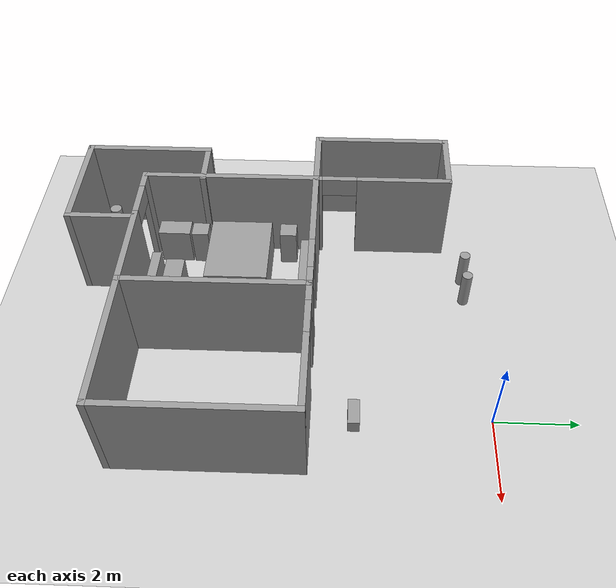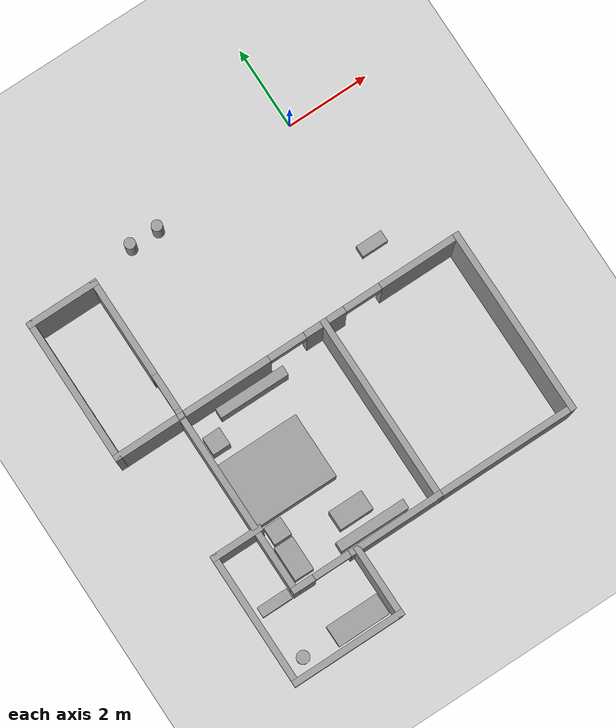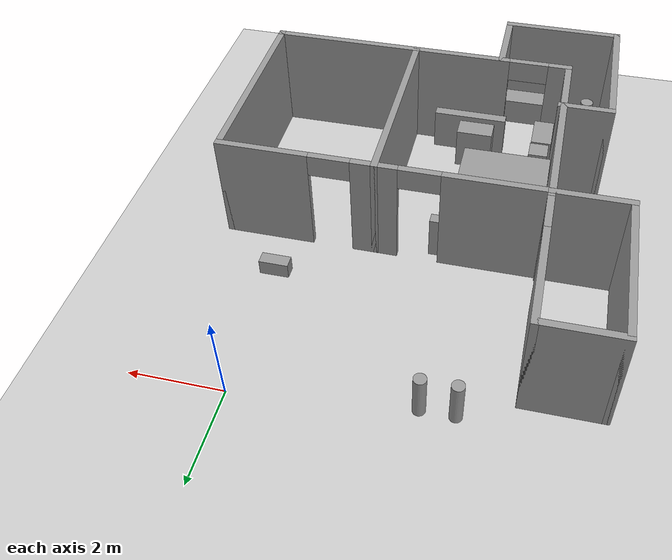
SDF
<sdf version="1.9">
 <world name="default">
  <model name="ground_plane">
   <static>true</static>
   <link name="link">
    <collision name="collision">
     <geometry><plane><normal>0 0 1</normal><size>100 100</size></plane></geometry>
     <surface><friction><ode><mu>100</mu><mu2>50</mu2></ode></friction></surface>
    </collision>
    <visual name="visual">
     <cast_shadows>false</cast_shadows>
     <geometry><plane><normal>0 0 1</normal><size>100 100</size></plane></geometry>
     <material>
      <script><uri>file://media/materials/scripts/gazebo.material</uri><name>Gazebo/Grey</name></script>
     </material>
    </visual>
   </link>
  </model>
  <model name="cma_varanda1">
   <pose>-6.3251799999999996 -2.5931299999999999 0 0 0 0</pose>
   <link name="Wall_0">
    <pose>0.80000000000000004 0 0 0 0 -1.5708</pose>
    <visual name="Wall_0_Visual_0">
     <pose>-0.55249999999999999 0 1.25 0 0 0</pose>
     <geometry><box><size>2.395 0.14999999999999999 2.5</size></box></geometry>
     <material>
      <script><uri>file://media/materials/scripts/gazebo.material</uri><name>Gazebo/Grey</name></script>
      <ambient>1 1 1 1</ambient>
     </material>
    </visual>
    <collision name="Wall_0_Collision_0">
     <geometry><box><size>2.395 0.14999999999999999 2.5</size></box></geometry>
     <pose>-0.55249999999999999 0 1.25 0 0 0</pose>
    </collision>
    <visual name="Wall_0_Visual_1">
     <pose>1.6375 0 1.25 0 0 0</pose>
     <geometry><box><size>0.22500000000000001 0.14999999999999999 2.5</size></box></geometry>
     <material>
      <script><uri>file://media/materials/scripts/gazebo.material</uri><name>Gazebo/Grey</name></script>
      <ambient>1 1 1 1</ambient>
     </material>
    </visual>
    <collision name="Wall_0_Collision_1">
     <geometry><box><size>0.22500000000000001 0.14999999999999999 2.5</size></box></geometry>
     <pose>1.6375 0 1.25 0 0 0</pose>
    </collision>
    <visual name="Wall_0_Visual_2">
     <pose>1.085 0 2.25 0 0 0</pose>
     <geometry><box><size>0.88 0.14999999999999999 0.5</size></box></geometry>
     <material>
      <script><uri>file://media/materials/scripts/gazebo.material</uri><name>Gazebo/Grey</name></script>
      <ambient>1 1 1 1</ambient>
     </material>
    </visual>
    <collision name="Wall_0_Collision_2">
     <geometry><box><size>0.88 0.14999999999999999 0.5</size></box></geometry>
     <pose>1.085 0 2.25 0 0 0</pose>
    </collision>
   </link>
   <link name="Wall_1">
    <collision name="Wall_1_Collision">
     <geometry><box><size>1.75 0.14999999999999999 2.5</size></box></geometry>
     <pose>0 0 1.25 0 0 0</pose>
    </collision>
    <visual name="Wall_1_Visual">
     <pose>0 0 1.25 0 0 0</pose>
     <geometry><box><size>1.75 0.14999999999999999 2.5</size></box></geometry>
     <material>
      <script><uri>file://media/materials/scripts/gazebo.material</uri><name>Gazebo/Grey</name></script>
      <ambient>1 1 1 1</ambient>
     </material>
    </visual>
    <pose>0 -1.675 0 0 0 3.1415899999999999</pose>
   </link>
   <link name="Wall_2">
    <collision name="Wall_2_Collision">
     <geometry><box><size>3.5 0.14999999999999999 2.5</size></box></geometry>
     <pose>0 0 1.25 0 0 0</pose>
    </collision>
    <visual name="Wall_2_Visual">
     <pose>0 0 1.25 0 0 0</pose>
     <geometry><box><size>3.5 0.14999999999999999 2.5</size></box></geometry>
     <material>
      <script><uri>file://media/materials/scripts/gazebo.material</uri><name>Gazebo/Grey</name></script>
      <ambient>1 1 1 1</ambient>
     </material>
    </visual>
    <pose>-0.80000000000000004 0 0 0 0 1.5708</pose>
   </link>
   <link name="Wall_3">
    <collision name="Wall_3_Collision">
     <geometry><box><size>1.75 0.14999999999999999 2.5</size></box></geometry>
     <pose>0 0 1.25 0 0 0</pose>
    </collision>
    <visual name="Wall_3_Visual">
     <pose>0 0 1.25 0 0 0</pose>
     <geometry><box><size>1.75 0.14999999999999999 2.5</size></box></geometry>
     <material>
      <script><uri>file://media/materials/scripts/gazebo.material</uri><name>Gazebo/Grey</name></script>
      <ambient>1 1 1 1</ambient>
     </material>
    </visual>
    <pose>0 1.675 0 0 0 0</pose>
   </link>
   <static>true</static>
  </model>
  <model name="cma_quartos">
   <pose>-2.58169 -7.2645600000000004 0 0 0 0</pose>
   <link name="Wall_0">
    <collision name="Wall_0_Collision">
     <geometry><box><size>4.5 0.14999999999999999 2.5</size></box></geometry>
     <pose>0 0 1.25 0 0 0</pose>
    </collision>
    <visual name="Wall_0_Visual">
     <pose>0 0 1.25 0 0 0</pose>
     <geometry><box><size>4.5 0.14999999999999999 2.5</size></box></geometry>
     <material>
      <script><uri>file://media/materials/scripts/gazebo.material</uri><name>Gazebo/Grey</name></script>
      <ambient>1 1 1 1</ambient>
     </material>
    </visual>
    <pose>0.64500000000000002 0.81000000000000005 0 0 0 -1.5708</pose>
   </link>
   <link name="Wall_1">
    <pose>-1.155 -1.365 0 0 0 3.1415899999999999</pose>
    <visual name="Wall_1_Visual_0">
     <pose>-0.72250000000000003 0 1.25 0 0 0</pose>
     <geometry><box><size>2.3050000000000002 0.14999999999999999 2.5</size></box></geometry>
     <material>
      <script><uri>file://media/materials/scripts/gazebo.material</uri><name>Gazebo/Grey</name></script>
      <ambient>1 1 1 1</ambient>
     </material>
    </visual>
    <collision name="Wall_1_Collision_0">
     <geometry><box><size>2.3050000000000002 0.14999999999999999 2.5</size></box></geometry>
     <pose>-0.72250000000000003 0 1.25 0 0 0</pose>
    </collision>
    <visual name="Wall_1_Visual_1">
     <pose>1.6025 0 1.25 0 0 0</pose>
     <geometry><box><size>0.54500000000000004 0.14999999999999999 2.5</size></box></geometry>
     <material>
      <script><uri>file://media/materials/scripts/gazebo.material</uri><name>Gazebo/Grey</name></script>
      <ambient>1 1 1 1</ambient>
     </material>
    </visual>
    <collision name="Wall_1_Collision_1">
     <geometry><box><size>0.54500000000000004 0.14999999999999999 2.5</size></box></geometry>
     <pose>1.6025 0 1.25 0 0 0</pose>
    </collision>
    <visual name="Wall_1_Visual_2">
     <pose>0.88 0 2.25 0 0 0</pose>
     <geometry><box><size>0.90000000000000002 0.14999999999999999 0.5</size></box></geometry>
     <material>
      <script><uri>file://media/materials/scripts/gazebo.material</uri><name>Gazebo/Grey</name></script>
      <ambient>1 1 1 1</ambient>
     </material>
    </visual>
    <collision name="Wall_1_Collision_2">
     <geometry><box><size>0.90000000000000002 0.14999999999999999 0.5</size></box></geometry>
     <pose>0.88 0 2.25 0 0 0</pose>
    </collision>
   </link>
   <link name="Wall_10">
    <collision name="Wall_10_Collision">
     <geometry><box><size>1.75 0.14999999999999999 2.5</size></box></geometry>
     <pose>0 0 1.25 0 0 0</pose>
    </collision>
    <visual name="Wall_10_Visual">
     <pose>0 0 1.25 0 0 0</pose>
     <geometry><box><size>1.75 0.14999999999999999 2.5</size></box></geometry>
     <material>
      <script><uri>file://media/materials/scripts/gazebo.material</uri><name>Gazebo/Grey</name></script>
      <ambient>1 1 1 1</ambient>
     </material>
    </visual>
    <pose>-1.395 -2.1850000000000001 0 0 0 -1.5708</pose>
   </link>
   <link name="Wall_11">
    <collision name="Wall_11_Collision">
     <geometry><box><size>2.75 0.14999999999999999 2.5</size></box></geometry>
     <pose>0 0 1.25 0 0 0</pose>
    </collision>
    <visual name="Wall_11_Visual">
     <pose>0 0 1.25 0 0 0</pose>
     <geometry><box><size>2.75 0.14999999999999999 2.5</size></box></geometry>
     <material>
      <script><uri>file://media/materials/scripts/gazebo.material</uri><name>Gazebo/Grey</name></script>
      <ambient>1 1 1 1</ambient>
     </material>
    </visual>
    <pose>-2.6949999999999998 -2.9849999999999999 0 0 0 3.1415899999999999</pose>
   </link>
   <link name="Wall_12">
    <collision name="Wall_12_Collision">
     <geometry><box><size>3.25 0.14999999999999999 2.5</size></box></geometry>
     <pose>0 0 1.25 0 0 0</pose>
    </collision>
    <visual name="Wall_12_Visual">
     <pose>0 0 1.25 0 0 0</pose>
     <geometry><box><size>3.25 0.14999999999999999 2.5</size></box></geometry>
     <material>
      <script><uri>file://media/materials/scripts/gazebo.material</uri><name>Gazebo/Grey</name></script>
      <ambient>1 1 1 1</ambient>
     </material>
    </visual>
    <pose>-3.9950000000000001 -1.4350000000000001 0 0 0 1.5708</pose>
   </link>
   <link name="Wall_13">
    <collision name="Wall_13_Collision">
     <geometry><box><size>1.25 0.14999999999999999 2.5</size></box></geometry>
     <pose>0 0 1.25 0 0 0</pose>
    </collision>
    <visual name="Wall_13_Visual">
     <pose>0 0 1.25 0 0 0</pose>
     <geometry><box><size>1.25 0.14999999999999999 2.5</size></box></geometry>
     <material>
      <script><uri>file://media/materials/scripts/gazebo.material</uri><name>Gazebo/Grey</name></script>
      <ambient>1 1 1 1</ambient>
     </material>
    </visual>
    <pose>-3.4449999999999998 0.115 0 0 0 0</pose>
   </link>
   <link name="Wall_2">
    <collision name="Wall_2_Collision">
     <geometry><box><size>4.5 0.14999999999999999 2.5</size></box></geometry>
     <pose>0 0 1.25 0 0 0</pose>
    </collision>
    <visual name="Wall_2_Visual">
     <pose>0 0 1.25 0 0 0</pose>
     <geometry><box><size>4.5 0.14999999999999999 2.5</size></box></geometry>
     <material>
      <script><uri>file://media/materials/scripts/gazebo.material</uri><name>Gazebo/Grey</name></script>
      <ambient>1 1 1 1</ambient>
     </material>
    </visual>
    <pose>-2.9550000000000001 0.81000000000000005 0 0 0 1.5708</pose>
   </link>
   <link name="Wall_3">
    <pose>-1.155 2.9849999999999999 0 0 0 0</pose>
    <visual name="Wall_3_Visual_0">
     <pose>-0.73250000000000004 0 1.25 0 0 0</pose>
     <geometry><box><size>2.2850000000000001 0.14999999999999999 2.5</size></box></geometry>
     <material>
      <script><uri>file://media/materials/scripts/gazebo.material</uri><name>Gazebo/Grey</name></script>
      <ambient>1 1 1 1</ambient>
     </material>
    </visual>
    <collision name="Wall_3_Collision_0">
     <geometry><box><size>2.2850000000000001 0.14999999999999999 2.5</size></box></geometry>
     <pose>-0.73250000000000004 0 1.25 0 0 0</pose>
    </collision>
    <visual name="Wall_3_Visual_1">
     <pose>1.5925 0 1.25 0 0 0</pose>
     <geometry><box><size>0.56499999999999995 0.14999999999999999 2.5</size></box></geometry>
     <material>
      <script><uri>file://media/materials/scripts/gazebo.material</uri><name>Gazebo/Grey</name></script>
      <ambient>1 1 1 1</ambient>
     </material>
    </visual>
    <collision name="Wall_3_Collision_1">
     <geometry><box><size>0.56499999999999995 0.14999999999999999 2.5</size></box></geometry>
     <pose>1.5925 0 1.25 0 0 0</pose>
    </collision>
    <visual name="Wall_3_Visual_2">
     <pose>0.85999999999999999 0 2.25 0 0 0</pose>
     <geometry><box><size>0.90000000000000002 0.14999999999999999 0.5</size></box></geometry>
     <material>
      <script><uri>file://media/materials/scripts/gazebo.material</uri><name>Gazebo/Grey</name></script>
      <ambient>1 1 1 1</ambient>
     </material>
    </visual>
    <collision name="Wall_3_Collision_2">
     <geometry><box><size>0.90000000000000002 0.14999999999999999 0.5</size></box></geometry>
     <pose>0.85999999999999999 0 2.25 0 0 0</pose>
    </collision>
   </link>
   <link name="Wall_6">
    <pose>2.3199999999999998 2.9849999999999999 0 0 0 0</pose>
    <visual name="Wall_6_Visual_0">
     <pose>-1.4575 0 1.25 0 0 0</pose>
     <geometry><box><size>0.58499999999999996 0.14999999999999999 2.5</size></box></geometry>
     <material>
      <script><uri>file://media/materials/scripts/gazebo.material</uri><name>Gazebo/Grey</name></script>
      <ambient>1 1 1 1</ambient>
     </material>
    </visual>
    <collision name="Wall_6_Collision_0">
     <geometry><box><size>0.58499999999999996 0.14999999999999999 2.5</size></box></geometry>
     <pose>-1.4575 0 1.25 0 0 0</pose>
    </collision>
    <visual name="Wall_6_Visual_1">
     <pose>0.74250000000000005 0 1.25 0 0 0</pose>
     <geometry><box><size>2.0150000000000001 0.14999999999999999 2.5</size></box></geometry>
     <material>
      <script><uri>file://media/materials/scripts/gazebo.material</uri><name>Gazebo/Grey</name></script>
      <ambient>1 1 1 1</ambient>
     </material>
    </visual>
    <collision name="Wall_6_Collision_1">
     <geometry><box><size>2.0150000000000001 0.14999999999999999 2.5</size></box></geometry>
     <pose>0.74250000000000005 0 1.25 0 0 0</pose>
    </collision>
    <visual name="Wall_6_Visual_2">
     <pose>-0.71499999999999997 0 2.25 0 0 0</pose>
     <geometry><box><size>0.90000000000000002 0.14999999999999999 0.5</size></box></geometry>
     <material>
      <script><uri>file://media/materials/scripts/gazebo.material</uri><name>Gazebo/Grey</name></script>
      <ambient>1 1 1 1</ambient>
     </material>
    </visual>
    <collision name="Wall_6_Collision_2">
     <geometry><box><size>0.90000000000000002 0.14999999999999999 0.5</size></box></geometry>
     <pose>-0.71499999999999997 0 2.25 0 0 0</pose>
    </collision>
   </link>
   <link name="Wall_7">
    <collision name="Wall_7_Collision">
     <geometry><box><size>4.5 0.14999999999999999 2.5</size></box></geometry>
     <pose>0 0 1.25 0 0 0</pose>
    </collision>
    <visual name="Wall_7_Visual">
     <pose>0 0 1.25 0 0 0</pose>
     <geometry><box><size>4.5 0.14999999999999999 2.5</size></box></geometry>
     <material>
      <script><uri>file://media/materials/scripts/gazebo.material</uri><name>Gazebo/Grey</name></script>
      <ambient>1 1 1 1</ambient>
     </material>
    </visual>
    <pose>3.9950000000000001 0.81000000000000005 0 0 0 -1.5708</pose>
   </link>
   <link name="Wall_8">
    <collision name="Wall_8_Collision">
     <geometry><box><size>3.5 0.14999999999999999 2.5</size></box></geometry>
     <pose>0 0 1.25 0 0 0</pose>
    </collision>
    <visual name="Wall_8_Visual">
     <pose>0 0 1.25 0 0 0</pose>
     <geometry><box><size>3.5 0.14999999999999999 2.5</size></box></geometry>
     <material>
      <script><uri>file://media/materials/scripts/gazebo.material</uri><name>Gazebo/Grey</name></script>
      <ambient>1 1 1 1</ambient>
     </material>
    </visual>
    <pose>2.3199999999999998 -1.365 0 0 0 3.1415899999999999</pose>
   </link>
   <static>true</static>
  </model>
  <model name="cma_cama_c">
   <link name="link_0">
    <pose>5.0000000000000004e-06 -3.9999999999999998e-06 0 0 0 0</pose>
    <inertial>
     <mass>3.1835800000000001</mass>
     <inertia>
      <ixx>0.93486199999999997</ixx>
      <ixy>0</ixy>
      <ixz>0</ixz>
      <iyy>1.3306899999999999</iyy>
      <iyz>0</iyz>
      <izz>1.7349600000000001</izz>
     </inertia>
    </inertial>
    <visual name="visual">
     <geometry><box><size>2.0039400000000001 1.58866 1</size></box></geometry>
     <material>
      <lighting>true</lighting>
      <script><uri>file://media/materials/scripts/gazebo.material</uri><name>Gazebo/Grey</name></script>
      <ambient>0.300000012 0.300000012 0.300000012 1</ambient>
      <diffuse>0.699999988 0.699999988 0.699999988 1</diffuse>
      <specular>0.00999999978 0.00999999978 0.00999999978 1</specular>
      <emissive>0 0 0 1</emissive>
     </material>
    </visual>
    <collision name="collision">
     <geometry><box><size>2.0039400000000001 1.58866 1</size></box></geometry>
     <surface>
      <friction>
       <ode><mu>1</mu><mu2>1</mu2><fdir1>0 0 0</fdir1><slip1>0</slip1><slip2>0</slip2></ode>
       <torsional>
        <coefficient>1</coefficient>
        <patch_radius>0</patch_radius>
        <surface_radius>0</surface_radius>
        <use_patch_radius>true</use_patch_radius>
        <ode><slip>0</slip></ode>
       </torsional>
      </friction>
      <bounce><restitution_coefficient>0</restitution_coefficient><threshold>1000000</threshold></bounce>
      <contact>
       <collide_without_contact>false</collide_without_contact>
       <collide_without_contact_bitmask>1</collide_without_contact_bitmask>
       <collide_bitmask>1</collide_bitmask>
       <ode>
        <soft_cfm>0</soft_cfm>
        <soft_erp>0.20000000000000001</soft_erp>
        <kp>10000000000000</kp>
        <kd>1</kd>
        <max_vel>0.01</max_vel>
        <min_depth>0</min_depth>
       </ode>
       <bullet>
        <split_impulse>true</split_impulse>
        <split_impulse_penetration_threshold>-0.01</split_impulse_penetration_threshold>
        <soft_cfm>0</soft_cfm>
        <soft_erp>0.20000000000000001</soft_erp>
        <kp>10000000000000</kp>
        <kd>1</kd>
       </bullet>
      </contact>
     </surface>
    </collision>
   </link>
   <static>false</static>
   <pose>-4.43933 -6.2481600000000004 0.5 0 0 0</pose>
  </model>
  <model name="cma_armario_0">
   <link name="link_0">
    <pose>1.3215699999999999 0.88517800000000002 0.5 0 0 0</pose>
    <inertial>
     <mass>0.40237600000000001</mass>
     <inertia>
      <ixx>0.0353686</ixx>
      <ixy>0</ixy>
      <ixz>0</ixz>
      <iyy>0.13261600000000001</iyy>
      <iyz>0</iyz>
      <izz>0.100922</izz>
     </inertia>
    </inertial>
    <visual name="visual">
     <geometry><box><size>1.7187699999999999 0.234069 1</size></box></geometry>
     <material>
      <lighting>true</lighting>
      <script><uri>file://media/materials/scripts/gazebo.material</uri><name>Gazebo/Grey</name></script>
      <ambient>0.300000012 0.300000012 0.300000012 1</ambient>
      <diffuse>0.699999988 0.699999988 0.699999988 1</diffuse>
      <specular>0.00999999978 0.00999999978 0.00999999978 1</specular>
      <emissive>0 0 0 1</emissive>
     </material>
    </visual>
    <collision name="collision">
     <geometry><box><size>1.7187699999999999 0.234069 1</size></box></geometry>
     <surface>
      <friction>
       <ode><mu>1</mu><mu2>1</mu2><fdir1>0 0 0</fdir1><slip1>0</slip1><slip2>0</slip2></ode>
       <torsional>
        <coefficient>1</coefficient>
        <patch_radius>0</patch_radius>
        <surface_radius>0</surface_radius>
        <use_patch_radius>true</use_patch_radius>
        <ode><slip>0</slip></ode>
       </torsional>
      </friction>
      <bounce><restitution_coefficient>0</restitution_coefficient><threshold>1000000</threshold></bounce>
      <contact>
       <collide_without_contact>false</collide_without_contact>
       <collide_without_contact_bitmask>1</collide_without_contact_bitmask>
       <collide_bitmask>1</collide_bitmask>
       <ode>
        <soft_cfm>0</soft_cfm>
        <soft_erp>0.20000000000000001</soft_erp>
        <kp>10000000000000</kp>
        <kd>1</kd>
        <max_vel>0.01</max_vel>
        <min_depth>0</min_depth>
       </ode>
       <bullet>
        <split_impulse>true</split_impulse>
        <split_impulse_penetration_threshold>-0.01</split_impulse_penetration_threshold>
        <soft_cfm>0</soft_cfm>
        <soft_erp>0.20000000000000001</soft_erp>
        <kp>10000000000000</kp>
        <kd>1</kd>
       </bullet>
      </contact>
     </surface>
    </collision>
   </link>
   <static>false</static>
   <pose>-5.2792500000000002 -5.4164099999999999 9.9999999999999995e-07 -9.9999999999999995e-07 2.0000000000000008e-06 -0.0033050000000000006</pose>
  </model>
  <model name="cma_gaveteiro_pequeno_1">
   <link name="link_0">
    <pose>0.25617400000000001 1.2505500000000001 0.5 0 0 0</pose>
    <inertial>
     <mass>0.18718599999999999</mass>
     <inertia>
      <ixx>0.018509999999999999</ixx>
      <ixy>0</ixy>
      <ixz>0</ixz>
      <iyy>0.018527600000000002</iyy>
      <iyz>0</iyz>
      <izz>0.00583981</izz>
     </inertia>
    </inertial>
    <visual name="visual">
     <geometry><box><size>0.43331700000000001 0.432002 1</size></box></geometry>
     <material>
      <lighting>true</lighting>
      <script><uri>file://media/materials/scripts/gazebo.material</uri><name>Gazebo/Grey</name></script>
      <ambient>0.300000012 0.300000012 0.300000012 1</ambient>
      <diffuse>0.699999988 0.699999988 0.699999988 1</diffuse>
      <specular>0.00999999978 0.00999999978 0.00999999978 1</specular>
      <emissive>0 0 0 1</emissive>
     </material>
    </visual>
    <collision name="collision">
     <geometry><box><size>0.43331700000000001 0.432002 1</size></box></geometry>
     <surface>
      <friction>
       <ode><mu>1</mu><mu2>1</mu2><fdir1>0 0 0</fdir1><slip1>0</slip1><slip2>0</slip2></ode>
       <torsional>
        <coefficient>1</coefficient>
        <patch_radius>0</patch_radius>
        <surface_radius>0</surface_radius>
        <use_patch_radius>true</use_patch_radius>
        <ode><slip>0</slip></ode>
       </torsional>
      </friction>
      <bounce><restitution_coefficient>0</restitution_coefficient><threshold>1000000</threshold></bounce>
      <contact>
       <collide_without_contact>false</collide_without_contact>
       <collide_without_contact_bitmask>1</collide_without_contact_bitmask>
       <collide_bitmask>1</collide_bitmask>
       <ode>
        <soft_cfm>0</soft_cfm>
        <soft_erp>0.20000000000000001</soft_erp>
        <kp>10000000000000</kp>
        <kd>1</kd>
        <max_vel>0.01</max_vel>
        <min_depth>0</min_depth>
       </ode>
       <bullet>
        <split_impulse>true</split_impulse>
        <split_impulse_penetration_threshold>-0.01</split_impulse_penetration_threshold>
        <soft_cfm>0</soft_cfm>
        <soft_erp>0.20000000000000001</soft_erp>
        <kp>10000000000000</kp>
        <kd>1</kd>
       </bullet>
      </contact>
     </surface>
    </collision>
   </link>
   <static>false</static>
   <pose>-5.4309500000000002 -6.25509 -3.9999999999999998e-06 3.0000000000000001e-06 -2.9999999999999997e-06 -1.8000000000000007e-05</pose>
  </model>
  <model name="cma_armario_s_0">
   <link name="link_1">
    <pose>-1.9999999999999999e-06 -3.0000000000000001e-06 0 0 0 0</pose>
    <inertial>
     <mass>0.39015899999999998</mass>
     <inertia>
      <ixx>0.039647000000000002</ixx>
      <ixy>0</ixy>
      <ixz>0</ixz>
      <iyy>0.055070800000000003</iyy>
      <iyz>0</iyz>
      <izz>0.029691200000000001</izz>
     </inertia>
    </inertial>
    <visual name="visual">
     <geometry><box><size>0.83294199999999996 0.46839700000000001 1</size></box></geometry>
     <material>
      <lighting>true</lighting>
      <script><uri>file://media/materials/scripts/gazebo.material</uri><name>Gazebo/Grey</name></script>
      <ambient>0.300000012 0.300000012 0.300000012 1</ambient>
      <diffuse>0.699999988 0.699999988 0.699999988 1</diffuse>
      <specular>0.00999999978 0.00999999978 0.00999999978 1</specular>
      <emissive>0 0 0 1</emissive>
     </material>
    </visual>
    <collision name="collision">
     <geometry><box><size>0.83294199999999996 0.46839700000000001 1</size></box></geometry>
     <surface>
      <friction>
       <ode><mu>1</mu><mu2>1</mu2><fdir1>0 0 0</fdir1><slip1>0</slip1><slip2>0</slip2></ode>
       <torsional>
        <coefficient>1</coefficient>
        <patch_radius>0</patch_radius>
        <surface_radius>0</surface_radius>
        <use_patch_radius>true</use_patch_radius>
        <ode><slip>0</slip></ode>
       </torsional>
      </friction>
      <bounce><restitution_coefficient>0</restitution_coefficient><threshold>1000000</threshold></bounce>
      <contact>
       <collide_without_contact>false</collide_without_contact>
       <collide_without_contact_bitmask>1</collide_without_contact_bitmask>
       <collide_bitmask>1</collide_bitmask>
       <ode>
        <soft_cfm>0</soft_cfm>
        <soft_erp>0.20000000000000001</soft_erp>
        <kp>10000000000000</kp>
        <kd>1</kd>
        <max_vel>0.01</max_vel>
        <min_depth>0</min_depth>
       </ode>
       <bullet>
        <split_impulse>true</split_impulse>
        <split_impulse_penetration_threshold>-0.01</split_impulse_penetration_threshold>
        <soft_cfm>0</soft_cfm>
        <soft_erp>0.20000000000000001</soft_erp>
        <kp>10000000000000</kp>
        <kd>1</kd>
       </bullet>
      </contact>
     </surface>
    </collision>
   </link>
   <static>false</static>
   <pose>-5.1684599999999996 -8.0155700000000003 0.5 0 0 -1.57603</pose>
  </model>
  <model name="cma_gaveteiro_pequeno_2">
   <link name="link_0">
    <pose>0.25617400000000001 1.2505500000000001 0.5 0 0 0</pose>
    <inertial>
     <mass>0.18718599999999999</mass>
     <inertia>
      <ixx>0.018509999999999999</ixx>
      <ixy>0</ixy>
      <ixz>0</ixz>
      <iyy>0.018527600000000002</iyy>
      <iyz>0</iyz>
      <izz>0.00583981</izz>
     </inertia>
    </inertial>
    <visual name="visual">
     <geometry><box><size>0.43331700000000001 0.432002 1</size></box></geometry>
     <material>
      <lighting>true</lighting>
      <script><uri>file://media/materials/scripts/gazebo.material</uri><name>Gazebo/Grey</name></script>
      <ambient>0.300000012 0.300000012 0.300000012 1</ambient>
      <diffuse>0.699999988 0.699999988 0.699999988 1</diffuse>
      <specular>0.00999999978 0.00999999978 0.00999999978 1</specular>
      <emissive>0 0 0 1</emissive>
     </material>
    </visual>
    <collision name="collision">
     <geometry><box><size>0.43331700000000001 0.432002 1</size></box></geometry>
     <surface>
      <friction>
       <ode><mu>1</mu><mu2>1</mu2><fdir1>0 0 0</fdir1><slip1>0</slip1><slip2>0</slip2></ode>
       <torsional>
        <coefficient>1</coefficient>
        <patch_radius>0</patch_radius>
        <surface_radius>0</surface_radius>
        <use_patch_radius>true</use_patch_radius>
        <ode><slip>0</slip></ode>
       </torsional>
      </friction>
      <bounce><restitution_coefficient>0</restitution_coefficient><threshold>1000000</threshold></bounce>
      <contact>
       <collide_without_contact>false</collide_without_contact>
       <collide_without_contact_bitmask>1</collide_without_contact_bitmask>
       <collide_bitmask>1</collide_bitmask>
       <ode>
        <soft_cfm>0</soft_cfm>
        <soft_erp>0.20000000000000001</soft_erp>
        <kp>10000000000000</kp>
        <kd>1</kd>
        <max_vel>0.01</max_vel>
        <min_depth>0</min_depth>
       </ode>
       <bullet>
        <split_impulse>true</split_impulse>
        <split_impulse_penetration_threshold>-0.01</split_impulse_penetration_threshold>
        <soft_cfm>0</soft_cfm>
        <soft_erp>0.20000000000000001</soft_erp>
        <kp>10000000000000</kp>
        <kd>1</kd>
       </bullet>
      </contact>
     </surface>
    </collision>
   </link>
   <static>false</static>
   <pose>-5.3916500000000003 -8.5855200000000007 -9.9999999999999995e-07 1.0000000000000002e-06 -9.9999999999999995e-07 -4.2999999999999995e-05</pose>
  </model>
  <model name="cma_armario_s_1">
   <link name="link_1">
    <pose>-1.9999999999999999e-06 -3.0000000000000001e-06 0 0 0 0</pose>
    <inertial>
     <mass>0.39015899999999998</mass>
     <inertia>
      <ixx>0.039647000000000002</ixx>
      <ixy>0</ixy>
      <ixz>0</ixz>
      <iyy>0.055070800000000003</iyy>
      <iyz>0</iyz>
      <izz>0.029691200000000001</izz>
     </inertia>
    </inertial>
    <visual name="visual">
     <geometry><box><size>0.83294199999999996 0.46839700000000001 1</size></box></geometry>
     <material>
      <lighting>true</lighting>
      <script><uri>file://media/materials/scripts/gazebo.material</uri><name>Gazebo/Grey</name></script>
      <ambient>0.300000012 0.300000012 0.300000012 1</ambient>
      <diffuse>0.699999988 0.699999988 0.699999988 1</diffuse>
      <specular>0.00999999978 0.00999999978 0.00999999978 1</specular>
      <emissive>0 0 0 1</emissive>
     </material>
    </visual>
    <collision name="collision">
     <geometry><box><size>0.83294199999999996 0.46839700000000001 1</size></box></geometry>
     <surface>
      <friction>
       <ode><mu>1</mu><mu2>1</mu2><fdir1>0 0 0</fdir1><slip1>0</slip1><slip2>0</slip2></ode>
       <torsional>
        <coefficient>1</coefficient>
        <patch_radius>0</patch_radius>
        <surface_radius>0</surface_radius>
        <use_patch_radius>true</use_patch_radius>
        <ode><slip>0</slip></ode>
       </torsional>
      </friction>
      <bounce><restitution_coefficient>0</restitution_coefficient><threshold>1000000</threshold></bounce>
      <contact>
       <collide_without_contact>false</collide_without_contact>
       <collide_without_contact_bitmask>1</collide_without_contact_bitmask>
       <collide_bitmask>1</collide_bitmask>
       <ode>
        <soft_cfm>0</soft_cfm>
        <soft_erp>0.20000000000000001</soft_erp>
        <kp>10000000000000</kp>
        <kd>1</kd>
        <max_vel>0.01</max_vel>
        <min_depth>0</min_depth>
       </ode>
       <bullet>
        <split_impulse>true</split_impulse>
        <split_impulse_penetration_threshold>-0.01</split_impulse_penetration_threshold>
        <soft_cfm>0</soft_cfm>
        <soft_erp>0.20000000000000001</soft_erp>
        <kp>10000000000000</kp>
        <kd>1</kd>
       </bullet>
      </contact>
     </surface>
    </collision>
   </link>
   <static>false</static>
   <pose>-3.5794800000000002 -7.8237399999999999 0.499996 -4.1359030629326426e-25 9.0000000000000036e-06 -0.00045199999999999998</pose>
  </model>
  <model name="cma_armario_1">
   <link name="link_0">
    <pose>1.3215699999999999 0.88517800000000002 0.5 0 0 0</pose>
    <inertial>
     <mass>0.40237600000000001</mass>
     <inertia>
      <ixx>0.0353686</ixx>
      <ixy>0</ixy>
      <ixz>0</ixz>
      <iyy>0.13261600000000001</iyy>
      <iyz>0</iyz>
      <izz>0.100922</izz>
     </inertia>
    </inertial>
    <visual name="visual">
     <geometry><box><size>1.7187699999999999 0.234069 1</size></box></geometry>
     <material>
      <lighting>true</lighting>
      <script><uri>file://media/materials/scripts/gazebo.material</uri><name>Gazebo/Grey</name></script>
      <ambient>0.300000012 0.300000012 0.300000012 1</ambient>
      <diffuse>0.699999988 0.699999988 0.699999988 1</diffuse>
      <specular>0.00999999978 0.00999999978 0.00999999978 1</specular>
      <emissive>0 0 0 1</emissive>
     </material>
    </visual>
    <collision name="collision">
     <geometry><box><size>1.7187699999999999 0.234069 1</size></box></geometry>
     <surface>
      <friction>
       <ode><mu>1</mu><mu2>1</mu2><fdir1>0 0 0</fdir1><slip1>0</slip1><slip2>0</slip2></ode>
       <torsional>
        <coefficient>1</coefficient>
        <patch_radius>0</patch_radius>
        <surface_radius>0</surface_radius>
        <use_patch_radius>true</use_patch_radius>
        <ode><slip>0</slip></ode>
       </torsional>
      </friction>
      <bounce><restitution_coefficient>0</restitution_coefficient><threshold>1000000</threshold></bounce>
      <contact>
       <collide_without_contact>false</collide_without_contact>
       <collide_without_contact_bitmask>1</collide_without_contact_bitmask>
       <collide_bitmask>1</collide_bitmask>
       <ode>
        <soft_cfm>0</soft_cfm>
        <soft_erp>0.20000000000000001</soft_erp>
        <kp>10000000000000</kp>
        <kd>1</kd>
        <max_vel>0.01</max_vel>
        <min_depth>0</min_depth>
       </ode>
       <bullet>
        <split_impulse>true</split_impulse>
        <split_impulse_penetration_threshold>-0.01</split_impulse_penetration_threshold>
        <soft_cfm>0</soft_cfm>
        <soft_erp>0.20000000000000001</soft_erp>
        <kp>10000000000000</kp>
        <kd>1</kd>
       </bullet>
      </contact>
     </surface>
    </collision>
   </link>
   <static>false</static>
   <pose>-4.7020900000000001 -9.22485 9.9999999999999995e-07 -9.9999999999999995e-07 2.0000000000000008e-06 -0.0033050000000000006</pose>
  </model>
  <model name="cma_lixo_2">
   <link name="link_1">
    <pose>0.88296200000000002 1.81586 0.5 0 0 0</pose>
    <inertial>
     <mass>0.068764400000000003</mass>
     <inertia>
      <ixx>0.00602588</ixx>
      <ixy>0</ixy>
      <ixz>0</ixz>
      <iyy>0.00602588</iyy>
      <iyz>0</iyz>
      <izz>0.00059106800000000004</izz>
     </inertia>
    </inertial>
    <visual name="visual">
     <geometry><cylinder><radius>0.13111200000000001</radius><length>1</length></cylinder></geometry>
     <material>
      <lighting>true</lighting>
      <script><uri>file://media/materials/scripts/gazebo.material</uri><name>Gazebo/Grey</name></script>
      <ambient>0.300000012 0.300000012 0.300000012 1</ambient>
      <diffuse>0.699999988 0.699999988 0.699999988 1</diffuse>
      <specular>0.00999999978 0.00999999978 0.00999999978 1</specular>
      <emissive>0 0 0 1</emissive>
     </material>
    </visual>
    <collision name="collision">
     <geometry><cylinder><radius>0.13111200000000001</radius><length>1</length></cylinder></geometry>
     <surface>
      <friction>
       <ode><mu>1</mu><mu2>1</mu2><fdir1>0 0 0</fdir1><slip1>0</slip1><slip2>0</slip2></ode>
       <torsional>
        <coefficient>1</coefficient>
        <patch_radius>0</patch_radius>
        <surface_radius>0</surface_radius>
        <use_patch_radius>true</use_patch_radius>
        <ode><slip>0</slip></ode>
       </torsional>
      </friction>
      <bounce><restitution_coefficient>0</restitution_coefficient><threshold>1000000</threshold></bounce>
      <contact>
       <collide_without_contact>false</collide_without_contact>
       <collide_without_contact_bitmask>1</collide_without_contact_bitmask>
       <collide_bitmask>1</collide_bitmask>
       <ode>
        <soft_cfm>0</soft_cfm>
        <soft_erp>0.20000000000000001</soft_erp>
        <kp>10000000000000</kp>
        <kd>1</kd>
        <max_vel>0.01</max_vel>
        <min_depth>0</min_depth>
       </ode>
       <bullet>
        <split_impulse>true</split_impulse>
        <split_impulse_penetration_threshold>-0.01</split_impulse_penetration_threshold>
        <soft_cfm>0</soft_cfm>
        <soft_erp>0.20000000000000001</soft_erp>
        <kp>10000000000000</kp>
        <kd>1</kd>
       </bullet>
      </contact>
     </surface>
    </collision>
   </link>
   <static>false</static>
   <pose>-5.2734199999999998 -2.2134499999999999 -3.0000000000000001e-06 0 0 0</pose>
  </model>
  <model name="cma_lixo_3">
   <link name="link_1">
    <pose>0.88296200000000002 1.81586 0.5 0 0 0</pose>
    <inertial>
     <mass>0.068764400000000003</mass>
     <inertia>
      <ixx>0.00602588</ixx>
      <ixy>0</ixy>
      <ixz>0</ixz>
      <iyy>0.00602588</iyy>
      <iyz>0</iyz>
      <izz>0.00059106800000000004</izz>
     </inertia>
    </inertial>
    <visual name="visual">
     <geometry><cylinder><radius>0.13111200000000001</radius><length>1</length></cylinder></geometry>
     <material>
      <lighting>true</lighting>
      <script><uri>file://media/materials/scripts/gazebo.material</uri><name>Gazebo/Grey</name></script>
      <ambient>0.300000012 0.300000012 0.300000012 1</ambient>
      <diffuse>0.699999988 0.699999988 0.699999988 1</diffuse>
      <specular>0.00999999978 0.00999999978 0.00999999978 1</specular>
      <emissive>0 0 0 1</emissive>
     </material>
    </visual>
    <collision name="collision">
     <geometry><cylinder><radius>0.13111200000000001</radius><length>1</length></cylinder></geometry>
     <surface>
      <friction>
       <ode><mu>1</mu><mu2>1</mu2><fdir1>0 0 0</fdir1><slip1>0</slip1><slip2>0</slip2></ode>
       <torsional>
        <coefficient>1</coefficient>
        <patch_radius>0</patch_radius>
        <surface_radius>0</surface_radius>
        <use_patch_radius>true</use_patch_radius>
        <ode><slip>0</slip></ode>
       </torsional>
      </friction>
      <bounce><restitution_coefficient>0</restitution_coefficient><threshold>1000000</threshold></bounce>
      <contact>
       <collide_without_contact>false</collide_without_contact>
       <collide_without_contact_bitmask>1</collide_without_contact_bitmask>
       <collide_bitmask>1</collide_bitmask>
       <ode>
        <soft_cfm>0</soft_cfm>
        <soft_erp>0.20000000000000001</soft_erp>
        <kp>10000000000000</kp>
        <kd>1</kd>
        <max_vel>0.01</max_vel>
        <min_depth>0</min_depth>
       </ode>
       <bullet>
        <split_impulse>true</split_impulse>
        <split_impulse_penetration_threshold>-0.01</split_impulse_penetration_threshold>
        <soft_cfm>0</soft_cfm>
        <soft_erp>0.20000000000000001</soft_erp>
        <kp>10000000000000</kp>
        <kd>1</kd>
       </bullet>
      </contact>
     </surface>
    </collision>
   </link>
   <static>false</static>
   <pose>-4.5749500000000003 -2.2090000000000001 -3.0000000000000001e-06 0 0 0</pose>
  </model>
  <model name="cma_barra_70cm">
   <link name="link_2">
    <pose>3.3538399999999999 1.20238 0.5 0 0 0</pose>
    <inertial>
     <mass>0.063136800000000007</mass>
     <inertia>
      <ixx>0.0010654200000000001</ixx>
      <ixy>0</ixy>
      <ixz>0</ixz>
      <iyy>0.0028472699999999998</iyy>
      <iyz>0</iyz>
      <izz>0.0025815</izz>
     </inertia>
    </inertial>
    <visual name="visual">
     <geometry><box><size>0.64393800000000001 0.27572799999999997 0.35573700000000003</size></box></geometry>
     <material>
      <lighting>true</lighting>
      <script><uri>file://media/materials/scripts/gazebo.material</uri><name>Gazebo/Grey</name></script>
      <ambient>0.300000012 0.300000012 0.300000012 1</ambient>
      <diffuse>0.699999988 0.699999988 0.699999988 1</diffuse>
      <specular>0.00999999978 0.00999999978 0.00999999978 1</specular>
      <emissive>0 0 0 1</emissive>
     </material>
    </visual>
    <collision name="collision">
     <geometry><box><size>0.64393800000000001 0.27572799999999997 0.35573700000000003</size></box></geometry>
     <surface>
      <friction>
       <ode><mu>1</mu><mu2>1</mu2><fdir1>0 0 0</fdir1><slip1>0</slip1><slip2>0</slip2></ode>
       <torsional>
        <coefficient>1</coefficient>
        <patch_radius>0</patch_radius>
        <surface_radius>0</surface_radius>
        <use_patch_radius>true</use_patch_radius>
        <ode><slip>0</slip></ode>
       </torsional>
      </friction>
      <bounce><restitution_coefficient>0</restitution_coefficient><threshold>1000000</threshold></bounce>
      <contact>
       <collide_without_contact>false</collide_without_contact>
       <collide_without_contact_bitmask>1</collide_without_contact_bitmask>
       <collide_bitmask>1</collide_bitmask>
       <ode>
        <soft_cfm>0</soft_cfm>
        <soft_erp>0.20000000000000001</soft_erp>
        <kp>10000000000000</kp>
        <kd>1</kd>
        <max_vel>0.01</max_vel>
        <min_depth>0</min_depth>
       </ode>
       <bullet>
        <split_impulse>true</split_impulse>
        <split_impulse_penetration_threshold>-0.01</split_impulse_penetration_threshold>
        <soft_cfm>0</soft_cfm>
        <soft_erp>0.20000000000000001</soft_erp>
        <kp>10000000000000</kp>
        <kd>1</kd>
       </bullet>
      </contact>
     </surface>
    </collision>
   </link>
   <static>false</static>
   <pose>-3.32572 -4.40177 -0.322102 -2.6999999999999999e-05 -1.6543612251060553e-24 -0.00096199999999999986</pose>
  </model>
  <model name="cma_sut_a1">
   <link name="link_0">
    <pose>1.9999999999999999e-06 1.9999999999999999e-06 0 0 0 0</pose>
    <inertial>
     <mass>0.43206699999999998</mass>
     <inertia>
      <ixx>0.024664499999999999</ixx>
      <ixy>0</ixy>
      <ixz>0</ixz>
      <iyy>0.075104199999999996</iyy>
      <iyz>0</iyz>
      <izz>0.069772100000000004</izz>
     </inertia>
    </inertial>
    <visual name="visual">
     <geometry><box><size>1.29203 0.51813299999999995 0.64540500000000001</size></box></geometry>
     <material>
      <lighting>true</lighting>
      <script><uri>file://media/materials/scripts/gazebo.material</uri><name>Gazebo/Grey</name></script>
      <ambient>0.300000012 0.300000012 0.300000012 1</ambient>
      <diffuse>0.699999988 0.699999988 0.699999988 1</diffuse>
      <specular>0.00999999978 0.00999999978 0.00999999978 1</specular>
      <emissive>0 0 0 1</emissive>
     </material>
    </visual>
    <collision name="collision">
     <geometry><box><size>1.29203 0.51813299999999995 0.64540500000000001</size></box></geometry>
     <surface>
      <friction>
       <ode><mu>1</mu><mu2>1</mu2><fdir1>0 0 0</fdir1><slip1>0</slip1><slip2>0</slip2></ode>
       <torsional>
        <coefficient>1</coefficient>
        <patch_radius>0</patch_radius>
        <surface_radius>0</surface_radius>
        <use_patch_radius>true</use_patch_radius>
        <ode><slip>0</slip></ode>
       </torsional>
      </friction>
      <bounce><restitution_coefficient>0</restitution_coefficient><threshold>1000000</threshold></bounce>
      <contact>
       <collide_without_contact>false</collide_without_contact>
       <collide_without_contact_bitmask>1</collide_without_contact_bitmask>
       <collide_bitmask>1</collide_bitmask>
       <ode>
        <soft_cfm>0</soft_cfm>
        <soft_erp>0.20000000000000001</soft_erp>
        <kp>10000000000000</kp>
        <kd>1</kd>
        <max_vel>0.01</max_vel>
        <min_depth>0</min_depth>
       </ode>
       <bullet>
        <split_impulse>true</split_impulse>
        <split_impulse_penetration_threshold>-0.01</split_impulse_penetration_threshold>
        <soft_cfm>0</soft_cfm>
        <soft_erp>0.20000000000000001</soft_erp>
        <kp>10000000000000</kp>
        <kd>1</kd>
       </bullet>
      </contact>
     </surface>
    </collision>
   </link>
   <static>false</static>
   <pose>-4.7378 -9.8567499999999999 0.32270300000000002 0 0 0</pose>
  </model>
  <model name="cma_sui_v">
   <link name="link_1">
    <pose>5.0000000000000004e-06 -5.0000000000000004e-06 0 0 0 0</pose>
    <inertial>
     <mass>0.067799200000000004</mass>
     <inertia>
      <ixx>0.0033454499999999998</ixx>
      <ixy>0</ixy>
      <ixz>0</ixz>
      <iyy>0.0033454499999999998</iyy>
      <iyz>0</iyz>
      <izz>0.00079549600000000003</izz>
     </inertia>
    </inertial>
    <visual name="visual">
     <geometry><cylinder><radius>0.15318499999999999</radius><length>0.722306</length></cylinder></geometry>
     <material>
      <lighting>true</lighting>
      <script><uri>file://media/materials/scripts/gazebo.material</uri><name>Gazebo/Grey</name></script>
      <ambient>0.300000012 0.300000012 0.300000012 1</ambient>
      <diffuse>0.699999988 0.699999988 0.699999988 1</diffuse>
      <specular>0.00999999978 0.00999999978 0.00999999978 1</specular>
      <emissive>0 0 0 1</emissive>
     </material>
    </visual>
    <collision name="collision">
     <geometry><cylinder><radius>0.15318499999999999</radius><length>0.722306</length></cylinder></geometry>
     <surface>
      <friction>
       <ode><mu>1</mu><mu2>1</mu2><fdir1>0 0 0</fdir1><slip1>0</slip1><slip2>0</slip2></ode>
       <torsional>
        <coefficient>1</coefficient>
        <patch_radius>0</patch_radius>
        <surface_radius>0</surface_radius>
        <use_patch_radius>true</use_patch_radius>
        <ode><slip>0</slip></ode>
       </torsional>
      </friction>
      <bounce><restitution_coefficient>0</restitution_coefficient><threshold>1000000</threshold></bounce>
      <contact>
       <collide_without_contact>false</collide_without_contact>
       <collide_without_contact_bitmask>1</collide_without_contact_bitmask>
       <collide_bitmask>1</collide_bitmask>
       <ode>
        <soft_cfm>0</soft_cfm>
        <soft_erp>0.20000000000000001</soft_erp>
        <kp>10000000000000</kp>
        <kd>1</kd>
        <max_vel>0.01</max_vel>
        <min_depth>0</min_depth>
       </ode>
       <bullet>
        <split_impulse>true</split_impulse>
        <split_impulse_penetration_threshold>-0.01</split_impulse_penetration_threshold>
        <soft_cfm>0</soft_cfm>
        <soft_erp>0.20000000000000001</soft_erp>
        <kp>10000000000000</kp>
        <kd>1</kd>
       </bullet>
      </contact>
     </surface>
    </collision>
   </link>
   <static>false</static>
   <pose>-6.1538599999999999 -9.8700299999999999 0.361153 -2.9999999999999997e-06 9.9999999999999995e-07 9.9999999999999995e-07</pose>
  </model>
  <model name="cma_sui_b">
   <link name="link_2">
    <pose>0 9.9999999999999995e-07 0 0 0 0</pose>
    <inertial>
     <mass>0.12198000000000001</mass>
     <inertia>
      <ixx>0.0048890399999999999</ixx>
      <ixy>0</ixy>
      <ixz>0</ixz>
      <iyy>0.0101198</iyy>
      <iyz>0</iyz>
      <izz>0.00648257</izz>
     </inertia>
    </inertial>
    <visual name="visual">
     <geometry><box><size>0.75905 0.248141 0.64760600000000001</size></box></geometry>
     <material>
      <lighting>true</lighting>
      <script><uri>file://media/materials/scripts/gazebo.material</uri><name>Gazebo/Grey</name></script>
      <ambient>0.300000012 0.300000012 0.300000012 1</ambient>
      <diffuse>0.699999988 0.699999988 0.699999988 1</diffuse>
      <specular>0.00999999978 0.00999999978 0.00999999978 1</specular>
      <emissive>0 0 0 1</emissive>
     </material>
    </visual>
    <collision name="collision">
     <geometry><box><size>0.75905 0.248141 0.64760600000000001</size></box></geometry>
     <surface>
      <friction>
       <ode><mu>1</mu><mu2>1</mu2><fdir1>0 0 0</fdir1><slip1>0</slip1><slip2>0</slip2></ode>
       <torsional>
        <coefficient>1</coefficient>
        <patch_radius>0</patch_radius>
        <surface_radius>0</surface_radius>
        <use_patch_radius>true</use_patch_radius>
        <ode><slip>0</slip></ode>
       </torsional>
      </friction>
      <bounce><restitution_coefficient>0</restitution_coefficient><threshold>1000000</threshold></bounce>
      <contact>
       <collide_without_contact>false</collide_without_contact>
       <collide_without_contact_bitmask>1</collide_without_contact_bitmask>
       <collide_bitmask>1</collide_bitmask>
       <ode>
        <soft_cfm>0</soft_cfm>
        <soft_erp>0.20000000000000001</soft_erp>
        <kp>10000000000000</kp>
        <kd>1</kd>
        <max_vel>0.01</max_vel>
        <min_depth>0</min_depth>
       </ode>
       <bullet>
        <split_impulse>true</split_impulse>
        <split_impulse_penetration_threshold>-0.01</split_impulse_penetration_threshold>
        <soft_cfm>0</soft_cfm>
        <soft_erp>0.20000000000000001</soft_erp>
        <kp>10000000000000</kp>
        <kd>1</kd>
       </bullet>
      </contact>
     </surface>
    </collision>
   </link>
   <static>false</static>
   <pose>-6.0214400000000001 -8.5708599999999997 0.32380300000000001 0 0 4.5999999999999993e-05</pose>
  </model>
 </world>
</sdf>
